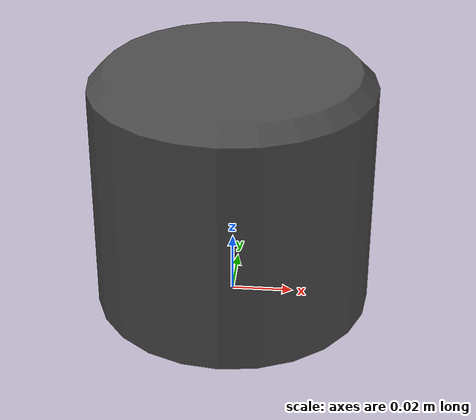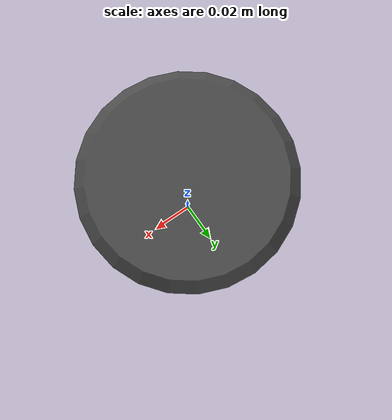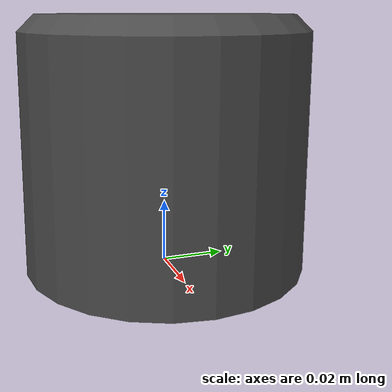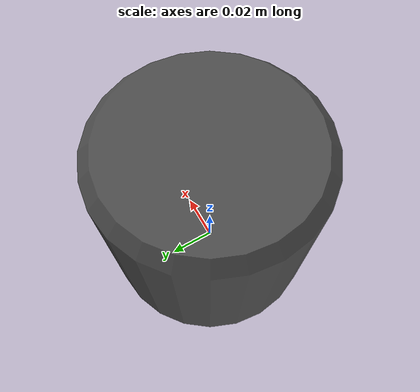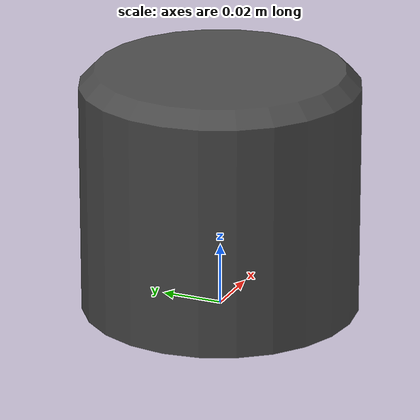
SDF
<?xml version='1.0'?>
<sdf version='1.4'>
  <model name="Pedestal">
    <static>true</static>
      <link name='Pedestal'>
        <collision name='Pedestal'>
          <pose>0 0 0 0 0 0</pose>
          <geometry>
            <mesh>
              <uri>model://pedestal/meshes/pedestal.dae</uri>
              <scale>1 1 1</scale>
            </mesh>
          </geometry>
          <max_contacts>10</max_contacts>
          <surface>
            <bounce/>
            <friction>
              <ode/>
            </friction>
            <contact>
              <ode/>
            </contact>
          </surface>
        </collision>

        <visual name='Pedestal'>
          <pose>0 0 0 0 0 0</pose>
          <geometry>
            <mesh>
              <uri>model://pedestal/meshes/pedestal.dae</uri>
              <scale>1 1 1</scale>
            </mesh>
          </geometry>
          <material>
            <script>
              <uri>file://media/materials/scripts/gazebo.material</uri>
              <name>Gazebo/DarkGrey</name>
            </script>
          </material>
        </visual>
  </link>
  </model>
</sdf>
